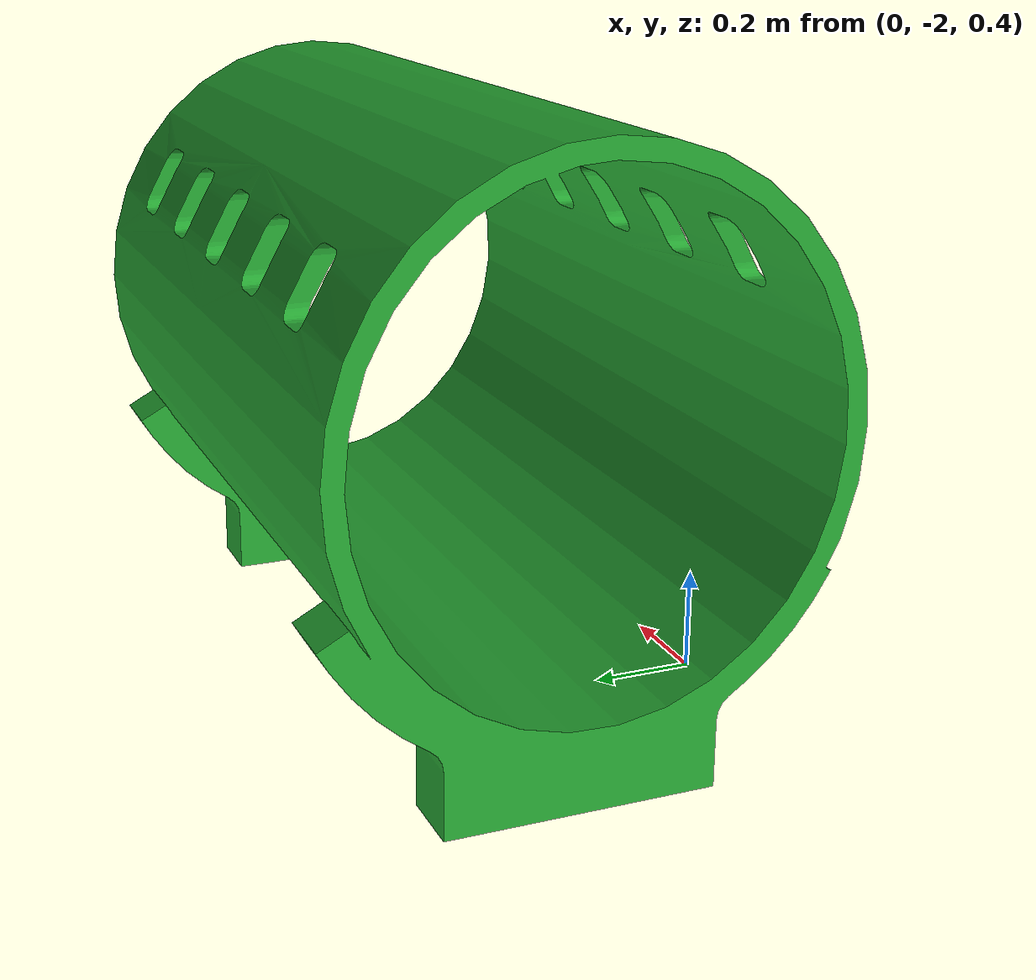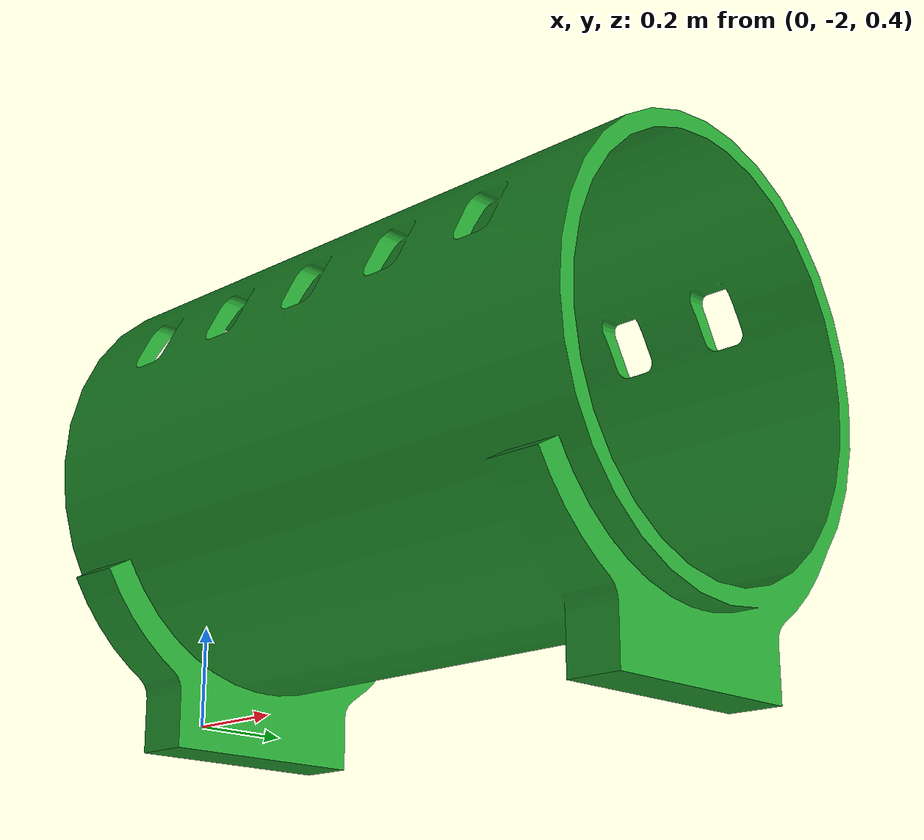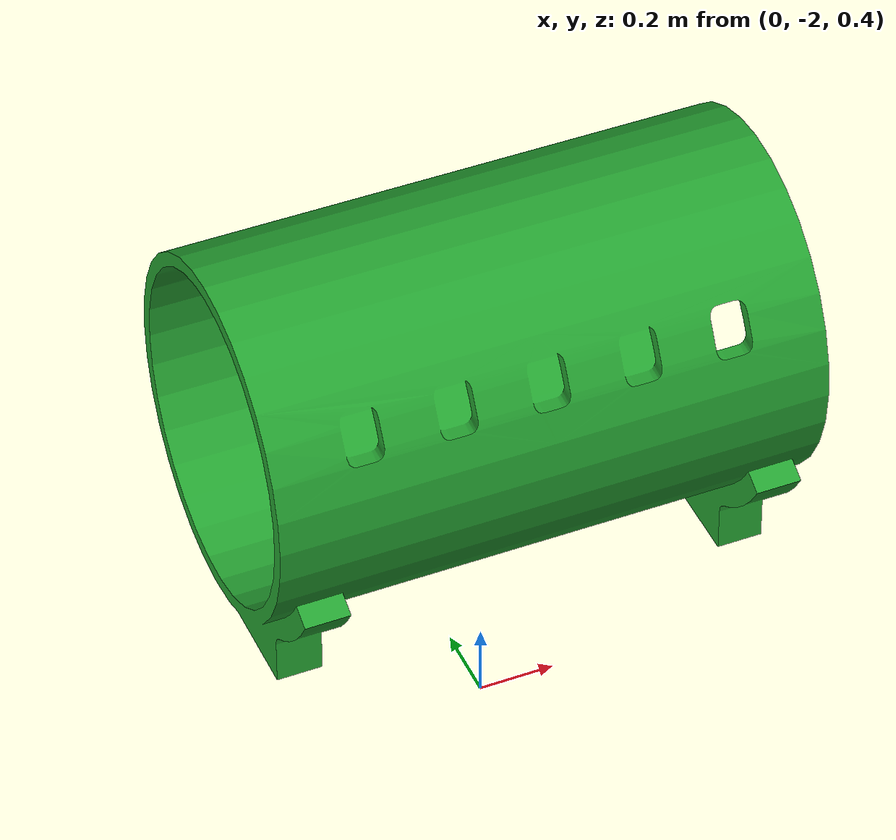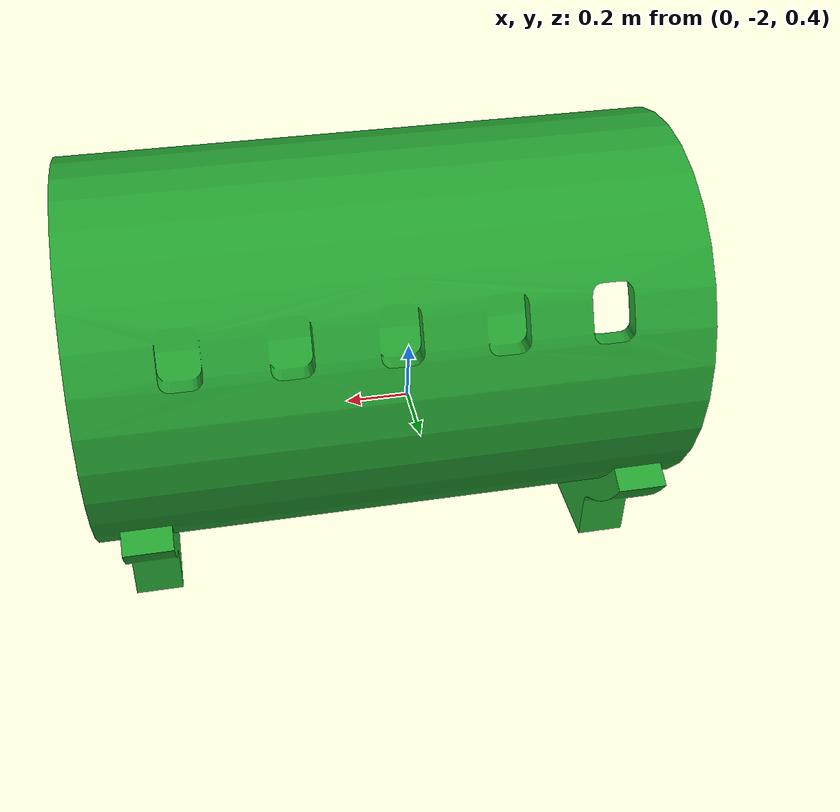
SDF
<sdf version='1.7'>
  <model name='fuselage'>
    <joint name='fix_fuselage' type='fixed'>
      <pose relative_to='__model__'>0 0 0 0 -0 0</pose>
      <parent>world</parent>
      <child>fuselage_link</child>
    </joint>
    <link name='fuselage_link'>
      <pose relative_to='fix_fuselage'>0 0 0 0 -0 0</pose>
      <inertial>
        <pose>0 0 0 0 -0 0</pose>
        <mass>12144</mass>
        <inertia>
          <ixx>37398</ixx>
          <ixy>-0.0018658</ixy>
          <ixz>0.0027121</ixz>
          <iyy>49184</iyy>
          <iyz>-0.00062593</iyz>
          <izz>50148</izz>
        </inertia>
      </inertial>
      <collision name='fuselage_link_collision'>
        <pose>0 0 0 0 -0 0</pose>
        <geometry>
          <mesh>
            <scale>1 1 1</scale>
            <uri>file://$(find ur_description)/meshes/fuselage/collision/fuselage.STL</uri>
          </mesh>
        </geometry>
        <surface>
          <contact>
            <ode/>
          </contact>
          <friction>
            <ode/>
          </friction>
        </surface>
      </collision>
      <visual name='fuselage_link_visual'>
        <pose>0 0 0 0 -0 0</pose>
        <geometry>
          <mesh>
            <scale>0.25 0.25 0.25</scale>
            <uri>file://$(find ur_description)/meshes/fuselage/collision/fuselage.STL</uri>
          </mesh>
        </geometry>
        <material>
          <script>
            <name>Gazebo/Green</name>
            <uri>file://media/materials/scripts/gazebo.material</uri>
          </script>
        </material>
      </visual>
    </link>
  </model>
</sdf>
